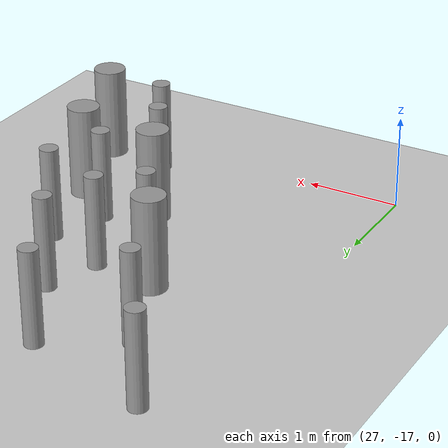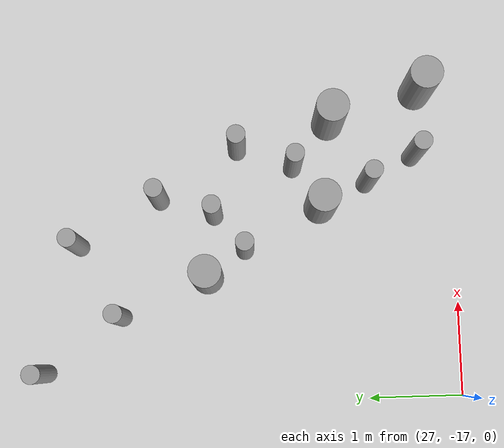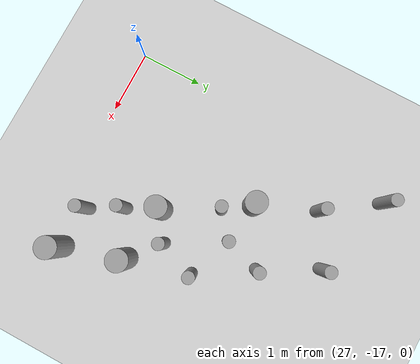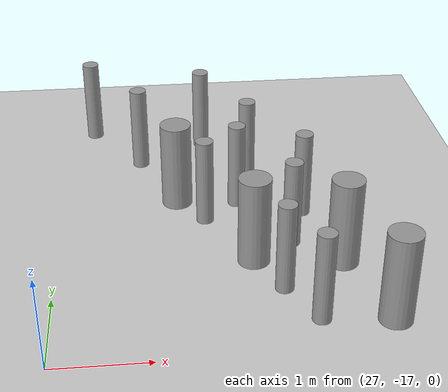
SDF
<sdf version="1.6">
 <world name="default">
  <model name="ground_plane">
   <static>1</static>
   <link name="link">
    <collision name="collision">
     <geometry><plane><normal>0 0 1</normal><size>100 100</size></plane></geometry>
     <surface><friction><ode><mu>100</mu><mu2>50</mu2></ode></friction></surface>
    </collision>
    <visual name="visual">
     <cast_shadows>0</cast_shadows>
     <geometry><plane><normal>0 0 1</normal><size>100 100</size></plane></geometry>
     <material>
      <script><uri>file://media/materials/scripts/gazebo.material</uri><name>Gazebo/Grey</name></script>
     </material>
    </visual>
   </link>
  </model>
  <model name="cyl_wall_clone_clone_1_clone_1_clone_clone_3_clone">
   <link name="link_0">
    <pose>-2.73893 -0.366465 0 0 -0 0</pose>
    <inertial>
     <mass>0.0374993</mass>
     <inertia>
      <ixx>0.00321281</ixx>
      <ixy>0</ixy>
      <ixz>0</ixz>
      <iyy>0.00321281</iyy>
      <iyz>0</iyz>
      <izz>0.000175774</izz>
     </inertia>
    </inertial>
    <visual name="visual">
     <geometry><cylinder><radius>0.0968661</radius><length>1</length></cylinder></geometry>
     <material>
      <lighting>1</lighting>
      <script><uri>file://media/materials/scripts/gazebo.material</uri><name>Gazebo/Grey</name></script>
      <ambient>0.3 0.3 0.3 1</ambient>
      <diffuse>0.7 0.7 0.7 1</diffuse>
      <specular>0.01 0.01 0.01 1</specular>
      <emissive>0 0 0 1</emissive>
     </material>
    </visual>
    <collision name="collision">
     <geometry><cylinder><radius>0.096866</radius><length>1</length></cylinder></geometry>
     <surface>
      <friction>
       <ode><mu>1</mu><mu2>1</mu2><fdir1>0 0 0</fdir1><slip1>0</slip1><slip2>0</slip2></ode>
       <torsional>
        <coefficient>1</coefficient>
        <patch_radius>0</patch_radius>
        <surface_radius>0</surface_radius>
        <use_patch_radius>1</use_patch_radius>
        <ode><slip>0</slip></ode>
       </torsional>
      </friction>
      <bounce><restitution_coefficient>0</restitution_coefficient><threshold>1e+06</threshold></bounce>
      <contact>
       <collide_without_contact>0</collide_without_contact>
       <collide_without_contact_bitmask>1</collide_without_contact_bitmask>
       <collide_bitmask>1</collide_bitmask>
       <ode>
        <soft_cfm>0</soft_cfm>
        <soft_erp>0.2</soft_erp>
        <kp>1e+13</kp>
        <kd>1</kd>
        <max_vel>0.01</max_vel>
        <min_depth>0</min_depth>
       </ode>
       <bullet>
        <split_impulse>1</split_impulse>
        <split_impulse_penetration_threshold>-0.01</split_impulse_penetration_threshold>
        <soft_cfm>0</soft_cfm>
        <soft_erp>0.2</soft_erp>
        <kp>1e+13</kp>
        <kd>1</kd>
       </bullet>
      </contact>
     </surface>
    </collision>
   </link>
   <link name="link_0_clone">
    <pose>-1.73893 0.61877 0 0 -0 0</pose>
    <inertial>
     <mass>0.0374993</mass>
     <inertia>
      <ixx>0.00321281</ixx>
      <ixy>0</ixy>
      <ixz>0</ixz>
      <iyy>0.00321281</iyy>
      <iyz>0</iyz>
      <izz>0.000175774</izz>
     </inertia>
    </inertial>
    <visual name="visual">
     <geometry><cylinder><radius>0.0968661</radius><length>1</length></cylinder></geometry>
     <material>
      <lighting>1</lighting>
      <script><uri>file://media/materials/scripts/gazebo.material</uri><name>Gazebo/Grey</name></script>
      <ambient>0.3 0.3 0.3 1</ambient>
      <diffuse>0.7 0.7 0.7 1</diffuse>
      <specular>0.01 0.01 0.01 1</specular>
      <emissive>0 0 0 1</emissive>
      <shader type="pixel"/>
     </material>
    </visual>
    <collision name="collision">
     <geometry><cylinder><radius>0.096866</radius><length>1</length></cylinder></geometry>
     <surface>
      <friction>
       <ode><mu>1</mu><mu2>1</mu2><fdir1>0 0 0</fdir1><slip1>0</slip1><slip2>0</slip2></ode>
       <torsional>
        <coefficient>1</coefficient>
        <patch_radius>0</patch_radius>
        <surface_radius>0</surface_radius>
        <use_patch_radius>1</use_patch_radius>
        <ode><slip>0</slip></ode>
       </torsional>
      </friction>
      <bounce><restitution_coefficient>0</restitution_coefficient><threshold>1e+06</threshold></bounce>
      <contact>
       <collide_without_contact>0</collide_without_contact>
       <collide_without_contact_bitmask>1</collide_without_contact_bitmask>
       <collide_bitmask>1</collide_bitmask>
       <ode>
        <soft_cfm>0</soft_cfm>
        <soft_erp>0.2</soft_erp>
        <kp>1e+13</kp>
        <kd>1</kd>
        <max_vel>0.01</max_vel>
        <min_depth>0</min_depth>
       </ode>
       <bullet>
        <split_impulse>1</split_impulse>
        <split_impulse_penetration_threshold>-0.01</split_impulse_penetration_threshold>
        <soft_cfm>0</soft_cfm>
        <soft_erp>0.2</soft_erp>
        <kp>1e+13</kp>
        <kd>1</kd>
       </bullet>
      </contact>
     </surface>
    </collision>
   </link>
   <link name="link_0_clone_clone">
    <pose>-0.327073 0.143919 0 0 -0 0</pose>
    <inertial>
     <mass>0.0374993</mass>
     <inertia>
      <ixx>0.00321281</ixx>
      <ixy>0</ixy>
      <ixz>0</ixz>
      <iyy>0.00321281</iyy>
      <iyz>0</iyz>
      <izz>0.000175774</izz>
     </inertia>
    </inertial>
    <visual name="visual">
     <geometry><cylinder><radius>0.0968661</radius><length>1</length></cylinder></geometry>
     <material>
      <lighting>1</lighting>
      <script><uri>file://media/materials/scripts/gazebo.material</uri><name>Gazebo/Grey</name></script>
      <ambient>0.3 0.3 0.3 1</ambient>
      <diffuse>0.7 0.7 0.7 1</diffuse>
      <specular>0.01 0.01 0.01 1</specular>
      <emissive>0 0 0 1</emissive>
      <shader type="pixel"/>
     </material>
    </visual>
    <collision name="collision">
     <geometry><cylinder><radius>0.096866</radius><length>1</length></cylinder></geometry>
     <surface>
      <friction>
       <ode><mu>1</mu><mu2>1</mu2><fdir1>0 0 0</fdir1><slip1>0</slip1><slip2>0</slip2></ode>
       <torsional>
        <coefficient>1</coefficient>
        <patch_radius>0</patch_radius>
        <surface_radius>0</surface_radius>
        <use_patch_radius>1</use_patch_radius>
        <ode><slip>0</slip></ode>
       </torsional>
      </friction>
      <bounce><restitution_coefficient>0</restitution_coefficient><threshold>1e+06</threshold></bounce>
      <contact>
       <collide_without_contact>0</collide_without_contact>
       <collide_without_contact_bitmask>1</collide_without_contact_bitmask>
       <collide_bitmask>1</collide_bitmask>
       <ode>
        <soft_cfm>0</soft_cfm>
        <soft_erp>0.2</soft_erp>
        <kp>1e+13</kp>
        <kd>1</kd>
        <max_vel>0.01</max_vel>
        <min_depth>0</min_depth>
       </ode>
       <bullet>
        <split_impulse>1</split_impulse>
        <split_impulse_penetration_threshold>-0.01</split_impulse_penetration_threshold>
        <soft_cfm>0</soft_cfm>
        <soft_erp>0.2</soft_erp>
        <kp>1e+13</kp>
        <kd>1</kd>
       </bullet>
      </contact>
     </surface>
    </collision>
   </link>
   <link name="link_0_clone_clone_0">
    <pose>1.26107 -0.419359 0 0 -0 0</pose>
    <inertial>
     <mass>0.0374993</mass>
     <inertia>
      <ixx>0.00321281</ixx>
      <ixy>0</ixy>
      <ixz>0</ixz>
      <iyy>0.00321281</iyy>
      <iyz>0</iyz>
      <izz>0.000175774</izz>
     </inertia>
    </inertial>
    <visual name="visual">
     <geometry><cylinder><radius>0.0968661</radius><length>1</length></cylinder></geometry>
     <material>
      <lighting>1</lighting>
      <script><uri>file://media/materials/scripts/gazebo.material</uri><name>Gazebo/Grey</name></script>
      <ambient>0.3 0.3 0.3 1</ambient>
      <diffuse>0.7 0.7 0.7 1</diffuse>
      <specular>0.01 0.01 0.01 1</specular>
      <emissive>0 0 0 1</emissive>
      <shader type="pixel"/>
     </material>
    </visual>
    <collision name="collision">
     <geometry><cylinder><radius>0.096866</radius><length>1</length></cylinder></geometry>
     <surface>
      <friction>
       <ode><mu>1</mu><mu2>1</mu2><fdir1>0 0 0</fdir1><slip1>0</slip1><slip2>0</slip2></ode>
       <torsional>
        <coefficient>1</coefficient>
        <patch_radius>0</patch_radius>
        <surface_radius>0</surface_radius>
        <use_patch_radius>1</use_patch_radius>
        <ode><slip>0</slip></ode>
       </torsional>
      </friction>
      <bounce><restitution_coefficient>0</restitution_coefficient><threshold>1e+06</threshold></bounce>
      <contact>
       <collide_without_contact>0</collide_without_contact>
       <collide_without_contact_bitmask>1</collide_without_contact_bitmask>
       <collide_bitmask>1</collide_bitmask>
       <ode>
        <soft_cfm>0</soft_cfm>
        <soft_erp>0.2</soft_erp>
        <kp>1e+13</kp>
        <kd>1</kd>
        <max_vel>0.01</max_vel>
        <min_depth>0</min_depth>
       </ode>
       <bullet>
        <split_impulse>1</split_impulse>
        <split_impulse_penetration_threshold>-0.01</split_impulse_penetration_threshold>
        <soft_cfm>0</soft_cfm>
        <soft_erp>0.2</soft_erp>
        <kp>1e+13</kp>
        <kd>1</kd>
       </bullet>
      </contact>
     </surface>
    </collision>
   </link>
   <link name="link_0_clone_clone_1">
    <pose>-1.73893 -0.277168 0 0 -0 0</pose>
    <inertial>
     <mass>0.0374993</mass>
     <inertia>
      <ixx>0.00321281</ixx>
      <ixy>0</ixy>
      <ixz>0</ixz>
      <iyy>0.00321281</iyy>
      <iyz>0</iyz>
      <izz>0.000175774</izz>
     </inertia>
    </inertial>
    <visual name="visual">
     <geometry><cylinder><radius>0.0968661</radius><length>1</length></cylinder></geometry>
     <material>
      <lighting>1</lighting>
      <script><uri>file://media/materials/scripts/gazebo.material</uri><name>Gazebo/Grey</name></script>
      <ambient>0.3 0.3 0.3 1</ambient>
      <diffuse>0.7 0.7 0.7 1</diffuse>
      <specular>0.01 0.01 0.01 1</specular>
      <emissive>0 0 0 1</emissive>
      <shader type="pixel"/>
     </material>
    </visual>
    <collision name="collision">
     <geometry><cylinder><radius>0.096866</radius><length>1</length></cylinder></geometry>
     <surface>
      <friction>
       <ode><mu>1</mu><mu2>1</mu2><fdir1>0 0 0</fdir1><slip1>0</slip1><slip2>0</slip2></ode>
       <torsional>
        <coefficient>1</coefficient>
        <patch_radius>0</patch_radius>
        <surface_radius>0</surface_radius>
        <use_patch_radius>1</use_patch_radius>
        <ode><slip>0</slip></ode>
       </torsional>
      </friction>
      <bounce><restitution_coefficient>0</restitution_coefficient><threshold>1e+06</threshold></bounce>
      <contact>
       <collide_without_contact>0</collide_without_contact>
       <collide_without_contact_bitmask>1</collide_without_contact_bitmask>
       <collide_bitmask>1</collide_bitmask>
       <ode>
        <soft_cfm>0</soft_cfm>
        <soft_erp>0.2</soft_erp>
        <kp>1e+13</kp>
        <kd>1</kd>
        <max_vel>0.01</max_vel>
        <min_depth>0</min_depth>
       </ode>
       <bullet>
        <split_impulse>1</split_impulse>
        <split_impulse_penetration_threshold>-0.01</split_impulse_penetration_threshold>
        <soft_cfm>0</soft_cfm>
        <soft_erp>0.2</soft_erp>
        <kp>1e+13</kp>
        <kd>1</kd>
       </bullet>
      </contact>
     </surface>
    </collision>
   </link>
   <link name="link_0_clone_clone_2">
    <pose>-0.738934 0.593961 0 0 -0 0</pose>
    <inertial>
     <mass>0.0374993</mass>
     <inertia>
      <ixx>0.00321281</ixx>
      <ixy>0</ixy>
      <ixz>0</ixz>
      <iyy>0.00321281</iyy>
      <iyz>0</iyz>
      <izz>0.000175774</izz>
     </inertia>
    </inertial>
    <visual name="visual">
     <geometry><cylinder><radius>0.0968661</radius><length>1</length></cylinder></geometry>
     <material>
      <lighting>1</lighting>
      <script><uri>file://media/materials/scripts/gazebo.material</uri><name>Gazebo/Grey</name></script>
      <ambient>0.3 0.3 0.3 1</ambient>
      <diffuse>0.7 0.7 0.7 1</diffuse>
      <specular>0.01 0.01 0.01 1</specular>
      <emissive>0 0 0 1</emissive>
      <shader type="pixel"/>
     </material>
    </visual>
    <collision name="collision">
     <geometry><cylinder><radius>0.096866</radius><length>1</length></cylinder></geometry>
     <surface>
      <friction>
       <ode><mu>1</mu><mu2>1</mu2><fdir1>0 0 0</fdir1><slip1>0</slip1><slip2>0</slip2></ode>
       <torsional>
        <coefficient>1</coefficient>
        <patch_radius>0</patch_radius>
        <surface_radius>0</surface_radius>
        <use_patch_radius>1</use_patch_radius>
        <ode><slip>0</slip></ode>
       </torsional>
      </friction>
      <bounce><restitution_coefficient>0</restitution_coefficient><threshold>1e+06</threshold></bounce>
      <contact>
       <collide_without_contact>0</collide_without_contact>
       <collide_without_contact_bitmask>1</collide_without_contact_bitmask>
       <collide_bitmask>1</collide_bitmask>
       <ode>
        <soft_cfm>0</soft_cfm>
        <soft_erp>0.2</soft_erp>
        <kp>1e+13</kp>
        <kd>1</kd>
        <max_vel>0.01</max_vel>
        <min_depth>0</min_depth>
       </ode>
       <bullet>
        <split_impulse>1</split_impulse>
        <split_impulse_penetration_threshold>-0.01</split_impulse_penetration_threshold>
        <soft_cfm>0</soft_cfm>
        <soft_erp>0.2</soft_erp>
        <kp>1e+13</kp>
        <kd>1</kd>
       </bullet>
      </contact>
     </surface>
    </collision>
   </link>
   <link name="link_0_clone_clone_3">
    <pose>0.261066 0.624849 0 0 -0 0</pose>
    <inertial>
     <mass>0.0374993</mass>
     <inertia>
      <ixx>0.00321281</ixx>
      <ixy>0</ixy>
      <ixz>0</ixz>
      <iyy>0.00321281</iyy>
      <iyz>0</iyz>
      <izz>0.000175774</izz>
     </inertia>
    </inertial>
    <visual name="visual">
     <geometry><cylinder><radius>0.0968661</radius><length>1</length></cylinder></geometry>
     <material>
      <lighting>1</lighting>
      <script><uri>file://media/materials/scripts/gazebo.material</uri><name>Gazebo/Grey</name></script>
      <ambient>0.3 0.3 0.3 1</ambient>
      <diffuse>0.7 0.7 0.7 1</diffuse>
      <specular>0.01 0.01 0.01 1</specular>
      <emissive>0 0 0 1</emissive>
      <shader type="pixel"/>
     </material>
    </visual>
    <collision name="collision">
     <geometry><cylinder><radius>0.096866</radius><length>1</length></cylinder></geometry>
     <surface>
      <friction>
       <ode><mu>1</mu><mu2>1</mu2><fdir1>0 0 0</fdir1><slip1>0</slip1><slip2>0</slip2></ode>
       <torsional>
        <coefficient>1</coefficient>
        <patch_radius>0</patch_radius>
        <surface_radius>0</surface_radius>
        <use_patch_radius>1</use_patch_radius>
        <ode><slip>0</slip></ode>
       </torsional>
      </friction>
      <bounce><restitution_coefficient>0</restitution_coefficient><threshold>1e+06</threshold></bounce>
      <contact>
       <collide_without_contact>0</collide_without_contact>
       <collide_without_contact_bitmask>1</collide_without_contact_bitmask>
       <collide_bitmask>1</collide_bitmask>
       <ode>
        <soft_cfm>0</soft_cfm>
        <soft_erp>0.2</soft_erp>
        <kp>1e+13</kp>
        <kd>1</kd>
        <max_vel>0.01</max_vel>
        <min_depth>0</min_depth>
       </ode>
       <bullet>
        <split_impulse>1</split_impulse>
        <split_impulse_penetration_threshold>-0.01</split_impulse_penetration_threshold>
        <soft_cfm>0</soft_cfm>
        <soft_erp>0.2</soft_erp>
        <kp>1e+13</kp>
        <kd>1</kd>
       </bullet>
      </contact>
     </surface>
    </collision>
   </link>
   <link name="link_0_clone_clone_4">
    <pose>-0.239049 -0.353105 0 0 -0 0</pose>
    <inertial>
     <mass>0.0374993</mass>
     <inertia>
      <ixx>0.00321281</ixx>
      <ixy>0</ixy>
      <ixz>0</ixz>
      <iyy>0.00321281</iyy>
      <iyz>0</iyz>
      <izz>0.000175774</izz>
     </inertia>
    </inertial>
    <visual name="visual">
     <geometry><cylinder><radius>0.0968661</radius><length>1</length></cylinder></geometry>
     <material>
      <lighting>1</lighting>
      <script><uri>file://media/materials/scripts/gazebo.material</uri><name>Gazebo/Grey</name></script>
      <ambient>0.3 0.3 0.3 1</ambient>
      <diffuse>0.7 0.7 0.7 1</diffuse>
      <specular>0.01 0.01 0.01 1</specular>
      <emissive>0 0 0 1</emissive>
      <shader type="pixel"/>
     </material>
    </visual>
    <collision name="collision">
     <geometry><cylinder><radius>0.096866</radius><length>1</length></cylinder></geometry>
     <surface>
      <friction>
       <ode><mu>1</mu><mu2>1</mu2><fdir1>0 0 0</fdir1><slip1>0</slip1><slip2>0</slip2></ode>
       <torsional>
        <coefficient>1</coefficient>
        <patch_radius>0</patch_radius>
        <surface_radius>0</surface_radius>
        <use_patch_radius>1</use_patch_radius>
        <ode><slip>0</slip></ode>
       </torsional>
      </friction>
      <bounce><restitution_coefficient>0</restitution_coefficient><threshold>1e+06</threshold></bounce>
      <contact>
       <collide_without_contact>0</collide_without_contact>
       <collide_without_contact_bitmask>1</collide_without_contact_bitmask>
       <collide_bitmask>1</collide_bitmask>
       <ode>
        <soft_cfm>0</soft_cfm>
        <soft_erp>0.2</soft_erp>
        <kp>1e+13</kp>
        <kd>1</kd>
        <max_vel>0.01</max_vel>
        <min_depth>0</min_depth>
       </ode>
       <bullet>
        <split_impulse>1</split_impulse>
        <split_impulse_penetration_threshold>-0.01</split_impulse_penetration_threshold>
        <soft_cfm>0</soft_cfm>
        <soft_erp>0.2</soft_erp>
        <kp>1e+13</kp>
        <kd>1</kd>
       </bullet>
      </contact>
     </surface>
    </collision>
   </link>
   <link name="link_0_clone_clone_5">
    <pose>0.672792 0.143919 0 0 -0 0</pose>
    <inertial>
     <mass>0.0374993</mass>
     <inertia>
      <ixx>0.00321281</ixx>
      <ixy>0</ixy>
      <ixz>0</ixz>
      <iyy>0.00321281</iyy>
      <iyz>0</iyz>
      <izz>0.000175774</izz>
     </inertia>
    </inertial>
    <visual name="visual">
     <geometry><cylinder><radius>0.0968661</radius><length>1</length></cylinder></geometry>
     <material>
      <lighting>1</lighting>
      <script><uri>file://media/materials/scripts/gazebo.material</uri><name>Gazebo/Grey</name></script>
      <ambient>0.3 0.3 0.3 1</ambient>
      <diffuse>0.7 0.7 0.7 1</diffuse>
      <specular>0.01 0.01 0.01 1</specular>
      <emissive>0 0 0 1</emissive>
      <shader type="pixel"/>
     </material>
    </visual>
    <collision name="collision">
     <geometry><cylinder><radius>0.096866</radius><length>1</length></cylinder></geometry>
     <surface>
      <friction>
       <ode><mu>1</mu><mu2>1</mu2><fdir1>0 0 0</fdir1><slip1>0</slip1><slip2>0</slip2></ode>
       <torsional>
        <coefficient>1</coefficient>
        <patch_radius>0</patch_radius>
        <surface_radius>0</surface_radius>
        <use_patch_radius>1</use_patch_radius>
        <ode><slip>0</slip></ode>
       </torsional>
      </friction>
      <bounce><restitution_coefficient>0</restitution_coefficient><threshold>1e+06</threshold></bounce>
      <contact>
       <collide_without_contact>0</collide_without_contact>
       <collide_without_contact_bitmask>1</collide_without_contact_bitmask>
       <collide_bitmask>1</collide_bitmask>
       <ode>
        <soft_cfm>0</soft_cfm>
        <soft_erp>0.2</soft_erp>
        <kp>1e+13</kp>
        <kd>1</kd>
        <max_vel>0.01</max_vel>
        <min_depth>0</min_depth>
       </ode>
       <bullet>
        <split_impulse>1</split_impulse>
        <split_impulse_penetration_threshold>-0.01</split_impulse_penetration_threshold>
        <soft_cfm>0</soft_cfm>
        <soft_erp>0.2</soft_erp>
        <kp>1e+13</kp>
        <kd>1</kd>
       </bullet>
      </contact>
     </surface>
    </collision>
   </link>
   <link name="link_0_clone_clone_6">
    <pose>1.84596 -0.433423 0 0 -0 0</pose>
    <inertial>
     <mass>0.0374993</mass>
     <inertia>
      <ixx>0.00321281</ixx>
      <ixy>0</ixy>
      <ixz>0</ixz>
      <iyy>0.00321281</iyy>
      <iyz>0</iyz>
      <izz>0.000175774</izz>
     </inertia>
    </inertial>
    <visual name="visual">
     <geometry><cylinder><radius>0.0968661</radius><length>1</length></cylinder></geometry>
     <material>
      <lighting>1</lighting>
      <script><uri>file://media/materials/scripts/gazebo.material</uri><name>Gazebo/Grey</name></script>
      <ambient>0.3 0.3 0.3 1</ambient>
      <diffuse>0.7 0.7 0.7 1</diffuse>
      <specular>0.01 0.01 0.01 1</specular>
      <emissive>0 0 0 1</emissive>
      <shader type="pixel"/>
     </material>
    </visual>
    <collision name="collision">
     <geometry><cylinder><radius>0.096866</radius><length>1</length></cylinder></geometry>
     <surface>
      <friction>
       <ode><mu>1</mu><mu2>1</mu2><fdir1>0 0 0</fdir1><slip1>0</slip1><slip2>0</slip2></ode>
       <torsional>
        <coefficient>1</coefficient>
        <patch_radius>0</patch_radius>
        <surface_radius>0</surface_radius>
        <use_patch_radius>1</use_patch_radius>
        <ode><slip>0</slip></ode>
       </torsional>
      </friction>
      <bounce><restitution_coefficient>0</restitution_coefficient><threshold>1e+06</threshold></bounce>
      <contact>
       <collide_without_contact>0</collide_without_contact>
       <collide_without_contact_bitmask>1</collide_without_contact_bitmask>
       <collide_bitmask>1</collide_bitmask>
       <ode>
        <soft_cfm>0</soft_cfm>
        <soft_erp>0.2</soft_erp>
        <kp>1e+13</kp>
        <kd>1</kd>
        <max_vel>0.01</max_vel>
        <min_depth>0</min_depth>
       </ode>
       <bullet>
        <split_impulse>1</split_impulse>
        <split_impulse_penetration_threshold>-0.01</split_impulse_penetration_threshold>
        <soft_cfm>0</soft_cfm>
        <soft_erp>0.2</soft_erp>
        <kp>1e+13</kp>
        <kd>1</kd>
       </bullet>
      </contact>
     </surface>
    </collision>
   </link>
   <link name="link_1">
    <pose>-0.738934 -0.397931 0 0 -0 0</pose>
    <inertial>
     <mass>0.117398</mass>
     <inertia>
      <ixx>0.0106445</ixx>
      <ixy>0</ixy>
      <ixz>0</ixz>
      <iyy>0.0106445</iyy>
      <iyz>0</iyz>
      <izz>0.00172278</izz>
     </inertia>
    </inertial>
    <visual name="visual">
     <geometry><cylinder><radius>0.171317</radius><length>1</length></cylinder></geometry>
     <material>
      <lighting>1</lighting>
      <script><uri>file://media/materials/scripts/gazebo.material</uri><name>Gazebo/Grey</name></script>
      <ambient>0.3 0.3 0.3 1</ambient>
      <diffuse>0.7 0.7 0.7 1</diffuse>
      <specular>0.01 0.01 0.01 1</specular>
      <emissive>0 0 0 1</emissive>
     </material>
    </visual>
    <collision name="collision">
     <geometry><cylinder><radius>0.171317</radius><length>1</length></cylinder></geometry>
     <surface>
      <friction>
       <ode><mu>1</mu><mu2>1</mu2><fdir1>0 0 0</fdir1><slip1>0</slip1><slip2>0</slip2></ode>
       <torsional>
        <coefficient>1</coefficient>
        <patch_radius>0</patch_radius>
        <surface_radius>0</surface_radius>
        <use_patch_radius>1</use_patch_radius>
        <ode><slip>0</slip></ode>
       </torsional>
      </friction>
      <bounce><restitution_coefficient>0</restitution_coefficient><threshold>1e+06</threshold></bounce>
      <contact>
       <collide_without_contact>0</collide_without_contact>
       <collide_without_contact_bitmask>1</collide_without_contact_bitmask>
       <collide_bitmask>1</collide_bitmask>
       <ode>
        <soft_cfm>0</soft_cfm>
        <soft_erp>0.2</soft_erp>
        <kp>1e+13</kp>
        <kd>1</kd>
        <max_vel>0.01</max_vel>
        <min_depth>0</min_depth>
       </ode>
       <bullet>
        <split_impulse>1</split_impulse>
        <split_impulse_penetration_threshold>-0.01</split_impulse_penetration_threshold>
        <soft_cfm>0</soft_cfm>
        <soft_erp>0.2</soft_erp>
        <kp>1e+13</kp>
        <kd>1</kd>
       </bullet>
      </contact>
     </surface>
    </collision>
   </link>
   <link name="link_1_clone">
    <pose>0.697784 -0.380861 0 0 -0 0</pose>
    <inertial>
     <mass>0.117398</mass>
     <inertia>
      <ixx>0.0106445</ixx>
      <ixy>0</ixy>
      <ixz>0</ixz>
      <iyy>0.0106445</iyy>
      <iyz>0</iyz>
      <izz>0.00172278</izz>
     </inertia>
    </inertial>
    <visual name="visual">
     <geometry><cylinder><radius>0.171317</radius><length>1</length></cylinder></geometry>
     <material>
      <lighting>1</lighting>
      <script><uri>file://media/materials/scripts/gazebo.material</uri><name>Gazebo/Grey</name></script>
      <ambient>0.3 0.3 0.3 1</ambient>
      <diffuse>0.7 0.7 0.7 1</diffuse>
      <specular>0.01 0.01 0.01 1</specular>
      <emissive>0 0 0 1</emissive>
      <shader type="pixel"/>
     </material>
    </visual>
    <collision name="collision">
     <geometry><cylinder><radius>0.171317</radius><length>1</length></cylinder></geometry>
     <surface>
      <friction>
       <ode><mu>1</mu><mu2>1</mu2><fdir1>0 0 0</fdir1><slip1>0</slip1><slip2>0</slip2></ode>
       <torsional>
        <coefficient>1</coefficient>
        <patch_radius>0</patch_radius>
        <surface_radius>0</surface_radius>
        <use_patch_radius>1</use_patch_radius>
        <ode><slip>0</slip></ode>
       </torsional>
      </friction>
      <bounce><restitution_coefficient>0</restitution_coefficient><threshold>1e+06</threshold></bounce>
      <contact>
       <collide_without_contact>0</collide_without_contact>
       <collide_without_contact_bitmask>1</collide_without_contact_bitmask>
       <collide_bitmask>1</collide_bitmask>
       <ode>
        <soft_cfm>0</soft_cfm>
        <soft_erp>0.2</soft_erp>
        <kp>1e+13</kp>
        <kd>1</kd>
        <max_vel>0.01</max_vel>
        <min_depth>0</min_depth>
       </ode>
       <bullet>
        <split_impulse>1</split_impulse>
        <split_impulse_penetration_threshold>-0.01</split_impulse_penetration_threshold>
        <soft_cfm>0</soft_cfm>
        <soft_erp>0.2</soft_erp>
        <kp>1e+13</kp>
        <kd>1</kd>
       </bullet>
      </contact>
     </surface>
    </collision>
   </link>
   <link name="link_1_clone_0">
    <pose>1.26107 0.358974 0 0 -0 0</pose>
    <inertial>
     <mass>0.117398</mass>
     <inertia>
      <ixx>0.0106445</ixx>
      <ixy>0</ixy>
      <ixz>0</ixz>
      <iyy>0.0106445</iyy>
      <iyz>0</iyz>
      <izz>0.00172278</izz>
     </inertia>
    </inertial>
    <visual name="visual">
     <geometry><cylinder><radius>0.171317</radius><length>1</length></cylinder></geometry>
     <material>
      <lighting>1</lighting>
      <script><uri>file://media/materials/scripts/gazebo.material</uri><name>Gazebo/Grey</name></script>
      <ambient>0.3 0.3 0.3 1</ambient>
      <diffuse>0.7 0.7 0.7 1</diffuse>
      <specular>0.01 0.01 0.01 1</specular>
      <emissive>0 0 0 1</emissive>
      <shader type="pixel"/>
     </material>
    </visual>
    <collision name="collision">
     <geometry><cylinder><radius>0.171317</radius><length>1</length></cylinder></geometry>
     <surface>
      <friction>
       <ode><mu>1</mu><mu2>1</mu2><fdir1>0 0 0</fdir1><slip1>0</slip1><slip2>0</slip2></ode>
       <torsional>
        <coefficient>1</coefficient>
        <patch_radius>0</patch_radius>
        <surface_radius>0</surface_radius>
        <use_patch_radius>1</use_patch_radius>
        <ode><slip>0</slip></ode>
       </torsional>
      </friction>
      <bounce><restitution_coefficient>0</restitution_coefficient><threshold>1e+06</threshold></bounce>
      <contact>
       <collide_without_contact>0</collide_without_contact>
       <collide_without_contact_bitmask>1</collide_without_contact_bitmask>
       <collide_bitmask>1</collide_bitmask>
       <ode>
        <soft_cfm>0</soft_cfm>
        <soft_erp>0.2</soft_erp>
        <kp>1e+13</kp>
        <kd>1</kd>
        <max_vel>0.01</max_vel>
        <min_depth>0</min_depth>
       </ode>
       <bullet>
        <split_impulse>1</split_impulse>
        <split_impulse_penetration_threshold>-0.01</split_impulse_penetration_threshold>
        <soft_cfm>0</soft_cfm>
        <soft_erp>0.2</soft_erp>
        <kp>1e+13</kp>
        <kd>1</kd>
       </bullet>
      </contact>
     </surface>
    </collision>
   </link>
   <link name="link_1_clone_1">
    <pose>2.26107 0.143919 0 0 -0 0</pose>
    <inertial>
     <mass>0.117398</mass>
     <inertia>
      <ixx>0.0106445</ixx>
      <ixy>0</ixy>
      <ixz>0</ixz>
      <iyy>0.0106445</iyy>
      <iyz>0</iyz>
      <izz>0.00172278</izz>
     </inertia>
    </inertial>
    <visual name="visual">
     <geometry><cylinder><radius>0.171317</radius><length>1</length></cylinder></geometry>
     <material>
      <lighting>1</lighting>
      <script><uri>file://media/materials/scripts/gazebo.material</uri><name>Gazebo/Grey</name></script>
      <ambient>0.3 0.3 0.3 1</ambient>
      <diffuse>0.7 0.7 0.7 1</diffuse>
      <specular>0.01 0.01 0.01 1</specular>
      <emissive>0 0 0 1</emissive>
      <shader type="pixel"/>
     </material>
    </visual>
    <collision name="collision">
     <geometry><cylinder><radius>0.171317</radius><length>1</length></cylinder></geometry>
     <surface>
      <friction>
       <ode><mu>1</mu><mu2>1</mu2><fdir1>0 0 0</fdir1><slip1>0</slip1><slip2>0</slip2></ode>
       <torsional>
        <coefficient>1</coefficient>
        <patch_radius>0</patch_radius>
        <surface_radius>0</surface_radius>
        <use_patch_radius>1</use_patch_radius>
        <ode><slip>0</slip></ode>
       </torsional>
      </friction>
      <bounce><restitution_coefficient>0</restitution_coefficient><threshold>1e+06</threshold></bounce>
      <contact>
       <collide_without_contact>0</collide_without_contact>
       <collide_without_contact_bitmask>1</collide_without_contact_bitmask>
       <collide_bitmask>1</collide_bitmask>
       <ode>
        <soft_cfm>0</soft_cfm>
        <soft_erp>0.2</soft_erp>
        <kp>1e+13</kp>
        <kd>1</kd>
        <max_vel>0.01</max_vel>
        <min_depth>0</min_depth>
       </ode>
       <bullet>
        <split_impulse>1</split_impulse>
        <split_impulse_penetration_threshold>-0.01</split_impulse_penetration_threshold>
        <soft_cfm>0</soft_cfm>
        <soft_erp>0.2</soft_erp>
        <kp>1e+13</kp>
        <kd>1</kd>
       </bullet>
      </contact>
     </surface>
    </collision>
   </link>
   <static>1</static>
   <pose>29.0573 -14.7363 0.5 0 0 -1.04703</pose>
  </model>
 </world>
</sdf>
